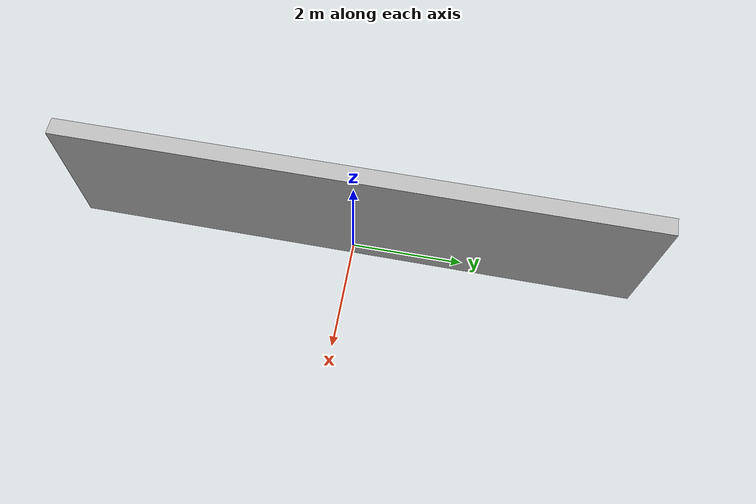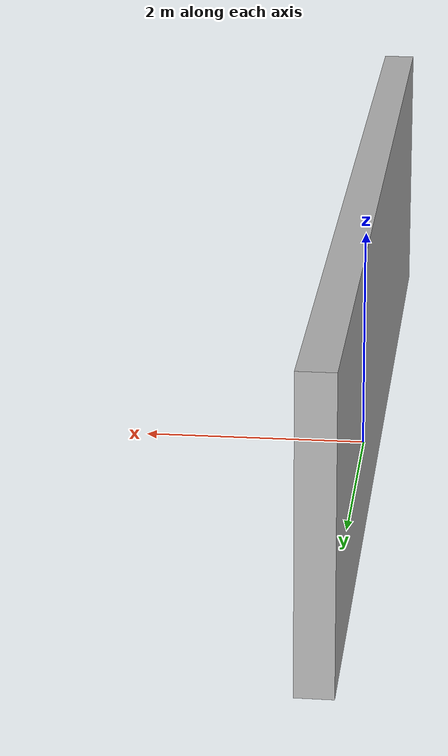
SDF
<?xml version="1.0" ?>
<sdf version="1.5">
  <model name="corridor_wall8">
    <static>true</static>
    <link name="link">
      <pose>0 0 1.25 0 0 1.5708</pose>
      <collision name="collision">
        <geometry>
          <box>
            <size>10.05 0.3 2.5</size>
          </box>
        </geometry>
      </collision>
      <visual name="visual">
        <cast_shadows>false</cast_shadows>
        <geometry>
          <box>
            <size>10.05 0.3 2.5</size>
          </box>
        </geometry>
        <material>
          <script>
            <uri>model://corridor_wall8/materials/scripts</uri>
            <uri>model://corridor_wall8/materials/textures</uri>
            <name>vrc/corridor_wall8</name>
          </script>
        </material>
      </visual>
    </link>
  </model>
</sdf>
